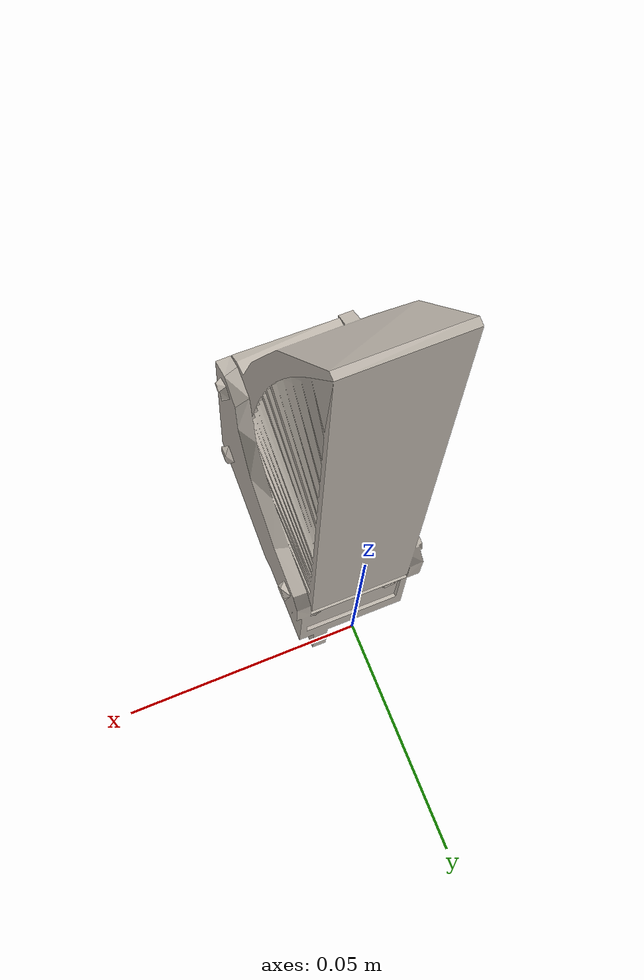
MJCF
<mujoco model="finray_finger">
    <compiler angle="radian" autolimits="true" />

    <default>
        <default class="visual">
            <geom type="mesh" contype="0" conaffinity="0" group="2" />
        </default>
        <default class="collision">
            <geom type="mesh" group="3" />
        </default>
        <default class="finray_collision">
            <geom condim="4" solimp="2 1 0.01" group="3" solref="0.01 1"
                friction="1 0.5 0.0005"
                priority="1" />
        </default>
    </default>

    <asset>
        <texture type="2d" name="texture"
            file="one_piece_wide_grasp_finray_finger_color.png" />
        <material name="finray_material" texture="texture" specular="0.5" shininess="0.0" />
        <mesh name="finger" file="one_piece_wide_grasp_finray_finger_decimated.obj"
            scale="0.76923076923 1.0 1.0" />
        <mesh name="finger_collider" file="collider.obj"
            scale="0.76923076923 1.0 1.0" />
    </asset>
    <worldbody>
        <body name="base">
            <!-- TODO measure real mass -->
            <inertial
                pos="0 0 0"
                mass="0.05"
                diaginertia="0.00068 0.00036 0.00091" />
            <geom mesh="finger" type="mesh" class="visual"
                mass="0.1" material="finray_material" />
            <geom mesh="finger_collider" type="mesh"
                class="finray_collision" rgba="1 0 0 1" />
        </body>
    </worldbody>
</mujoco>
